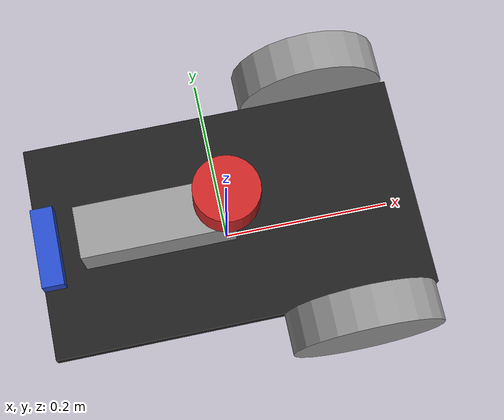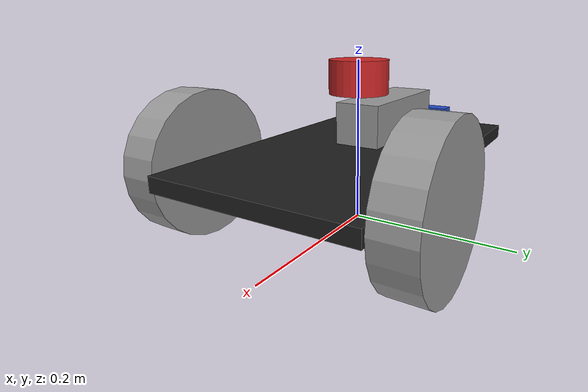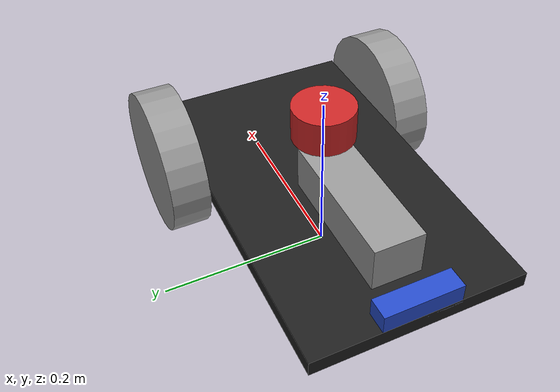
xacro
<?xml version="1.0"?>
<robot xmlns:xacro="http://www.ros.org/wiki/xacro"  name="salamanca">

    <xacro:include filename="common_properties.xacro" />
    <xacro:include filename="robot_core.xacro"/>
    <xacro:include filename="gazebo_control.xacro"/>
    <xacro:include filename="lidar.xacro"/>
    <xacro:include filename="camera.xacro"/>

</robot>

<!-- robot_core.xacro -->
<robot xmlns:xacro="http://www.ros.org/wiki/xacro">
    <xacro:property name="scale_factor" value="0.001" />

     <!--Base size -->
    <xacro:property name="base_length" value="0.43" />
    <xacro:property name="base_width" value="0.245" />
    <xacro:property name="base_height" value="0.018" />
    <xacro:property name="base_mass" value="1" />

    <!--Castor wheel size -->
    <xacro:property name="castor_radius" value="0.022" />
    <xacro:property name="castor_height" value="0.007" />
    <xacro:property name="castor_mass" value="0.08" />

    <!--Realsense size -->
    <xacro:property name="realsense_length" value="0.025" />
    <xacro:property name="realsense_width" value="0.09" />
    <xacro:property name="realsense_height" value="0.025" />
    <xacro:property name="realsense_mass" value="0.072" />

    <!--Jetson size -->
    <xacro:property name="jetson_length" value="0.10" />
    <xacro:property name="jetson_width" value="0.079" />
    <xacro:property name="jetson_height" value="0.029" />
    <xacro:property name="jetson_mass" value="0.28" />

    <!--Odrive size -->
    <xacro:property name="odrive_radius" value="0.0855" />
    <xacro:property name="odrive_height" value="0.045" />
    <xacro:property name="odrive_mass" value="2.2" />

    <!--Rplidar mount size-->
    <xacro:property name="rplidar_mount_length" value="0.075" />
    <xacro:property name="rplidar_mount_width" value="0.075" />
    <xacro:property name="rplidar_mount_height" value="0.045" />
    <xacro:property name="rplidar_mount_mass" value="0.34" />

    <!--Tattu battery size -->
    <xacro:property name="battery_length" value="0.17" />
    <xacro:property name="battery_width" value="0.058" />
    <xacro:property name="battery_height" value="0.062" />
    <xacro:property name="battery_mass" value="1.974" />

    <link name="base_link">

    </link>

    <!-- Platform link -->

    <joint name="platform_joint" type="fixed">
        <parent link="base_link" />
        <child link="platform" />
        <origin xyz="0 0 ${odrive_radius}" />
    </joint>

    <link name="platform">
        <visual>
            <geometry>
                <box size="${base_length} ${base_width} ${base_height}" />
            </geometry>
            <origin xyz="0 0 0" rpy="0 0 0" />
        </visual>
        <collision>
            <geometry>
                <box size="${base_length} ${base_width} ${base_height}" />
            </geometry>
            <origin xyz="0 0 0" rpy="0 0 0" />
        </collision>
        <xacro:box_inertia m="${base_mass}" l="${base_length}" w="${base_width}" h="${base_height}"
            xyz="0 0 0" rpy="0 0 0" />
    </link>

    <gazebo reference="platform">
        <material>Gazebo/Black</material>
    </gazebo>

    <!-- Battery link -->

    <joint name="battery_joint" type="fixed">
        <parent link="platform" />
        <child link="battery" />
        <origin xyz="-0.08 0 ${battery_height/2}" rpy="0 0 0" />
    </joint>

    <link name="battery">
        <visual>
            <geometry>
                <box size="${battery_length} ${battery_width} ${battery_height}" />
            </geometry>
            <origin xyz="0 0 0" rpy="0 0 0" />
        </visual>
        <collision>
            <geometry>
                <box size="${battery_length} ${battery_width} ${battery_height}" />
            </geometry>
            <origin xyz="0 0 0" rpy="0 0 0" />
        </collision>
        <xacro:box_inertia m="${battery_mass}" l="${battery_length}" w="${battery_width}" h="${battery_height}"
            xyz="0 0 0" rpy="0 0 0" />
    </link>

    <gazebo reference="battery">
        <material>Gazebo/Grey</material>
    </gazebo>

    <!-- Left wheel link -->
    <joint name="left_wheel_joint" type="continuous">
        <parent link="base_link" />
        <child link="left_wheel" />
        <origin xyz="${odrive_radius + 0.04} ${(-base_width / 2) - (odrive_height/2)} ${odrive_radius}" rpy="-${pi/2} 0 0" />
        <axis xyz="0 0 -1"/>
    </joint>

    <link name="left_wheel">
        <visual>
            <geometry>
                <cylinder radius="${odrive_radius}" length="${odrive_height}" />
            </geometry>
        </visual>
        <collision>
            <geometry>
                <cylinder radius="${odrive_radius}" length="${odrive_height}" />
            </geometry>
            <origin xyz="0 0 0" rpy="0 0 0" />
        </collision>
        <xacro:cylinder_inertia m="${odrive_mass}" r="${odrive_radius}" h="${odrive_height}"
            xyz="0 0 0" rpy="0 0 0" />
    </link>

    <gazebo reference="left_wheel">
        <material>Gazebo/Grey</material>
    </gazebo>

    <!-- Right wheel link -->
    <joint name="right_wheel_joint" type="continuous">
        <parent link="base_link" />
        <child link="right_wheel" />
        <origin xyz="${odrive_radius + 0.04} ${(base_width / 2) + (odrive_height/2)} ${odrive_radius}" rpy="${pi/2} 0 0" />
        <axis xyz="0 0 1"/>
    </joint>

    <link name="right_wheel">
        <visual>
            <geometry>
                <cylinder radius="${odrive_radius}" length="${odrive_height}" />
            </geometry>
        </visual>
        <collision>
            <geometry>
                <cylinder radius="${odrive_radius}" length="${odrive_height}" />
            </geometry>
            <origin xyz="0 0 0" rpy="0 0 0" />
        </collision>
        <xacro:cylinder_inertia m="${odrive_mass}" r="${odrive_radius}" h="${odrive_height}"
            xyz="0 0 0" rpy="0 0 0" />
    </link>

    <gazebo reference="right_wheel">
        <material>Gazebo/Grey</material>
    </gazebo>

    <!-- Castor Wheel link -->

    <joint name="castor_joint" type="fixed">
        <parent link="base_link" />
        <child link="castor_wheel" />
        <origin xyz="${-(2/7)*base_length + 0.01} 0 ${odrive_radius/2}" rpy="0 0 0" />
    </joint>

    <link name="castor_wheel">
        <visual>
            <geometry>
                <sphere radius="${odrive_radius/2}" />
            </geometry>
        </visual>
        <collision>
            <geometry>
                <sphere radius="${odrive_radius/2}" />
            </geometry>
            <origin xyz="0 0 0" rpy="0 0 0" />
        </collision>
        <xacro:cylinder_inertia m="${castor_mass}" r="${castor_radius}" h="${castor_height}"
            xyz="0 0 0" rpy="0 0 0" />
    </link>

    <gazebo reference="castor_wheel">
        <material>Gazebo/Grey</material>
        <mu1 value="0.001"/>
        <mu2 value="0.001"/>
    </gazebo>

</robot>

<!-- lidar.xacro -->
<robot xmlns:xacro="http://www.ros.org/wiki/xacro">

    <!--rplidar a2 size -->
    <xacro:property name="rplidar_a2_radius" value="0.03625" />
    <xacro:property name="rplidar_a2_height" value="0.041" />
    <xacro:property name="rplidar_a2_mass" value="0.19" />

    <joint name="laser_joint" type="fixed">
        <parent link="platform" />
        <child link="laser_frame" />
        <origin xyz="0 0 0.095" rpy="0 0 0"/>
    </joint>

    <link name="laser_frame">
        <visual>
            <geometry>
                <cylinder radius="${rplidar_a2_radius}" length="${rplidar_a2_height}" />
            </geometry>
        </visual>
        <collision>
            <geometry>
                <cylinder radius="${rplidar_a2_radius}" length="${rplidar_a2_height}" />
            </geometry>
            <origin xyz="0 0 0" rpy="0 0 0" />
        </collision>
        <xacro:cylinder_inertia m="${rplidar_a2_mass}" r="${rplidar_a2_radius}" h="${rplidar_a2_height}"
            xyz="0 0 0" rpy="0 0 0" />
    </link>

    <gazebo reference="laser_frame">
        <material>Gazebo/Red</material>

        <sensor name="laser" type="ray">
            <pose> 0 0 0 0 0 0 </pose>
            <visualize>true</visualize>
            <update_rate>10</update_rate>
            <ray>
                <scan>
                    <horizontal>
                        <samples>360</samples>
                        <min_angle>-3.14</min_angle>
                        <max_angle>3.14</max_angle>
                    </horizontal>
                </scan>
                <range>
                    <min>0.3</min>
                    <max>12</max>
                </range>
            </ray>
            <plugin name="laser_controller" filename="libgazebo_ros_ray_sensor.so">
                <ros>
                    <argument>~/out:=scan</argument>
                </ros>
                <output_type>sensor_msgs/LaserScan</output_type>
                <frame_name>laser_frame</frame_name>
            </plugin>
        </sensor>
    </gazebo>

</robot>

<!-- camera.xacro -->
<robot xmlns:xacro="http://www.ros.org/wiki/xacro">

    <!-- Camera link -->

    <joint name="camera_joint" type="fixed">
        <parent link="platform" />
        <child link="camera_link" />
        <origin xyz="${(-base_length/2) + (realsense_length/2)} 0 ${base_height}" rpy="0 0 ${pi}"/>
    </joint>

    <link name="camera_link">
        <visual>
            <geometry>
                <box size="${realsense_length} ${realsense_width} ${realsense_height}" />
            </geometry>
            <origin xyz="0 0 0" rpy="0 0 0" />
        </visual>
    </link>

    <!-- Camera link - optical -->

    <joint name="camera_optical_joint" type="fixed">
        <parent link="camera_link" />
        <child link="camera_optical_link" />
        <origin xyz="0 0 0" rpy="${-pi/2} 0 ${-pi/2}"/>
    </joint>

    <link name="camera_optical_link"></link>

    <gazebo reference="camera_link">
        <material>Gazebo/Blue</material>

        <sensor name="camera" type="camera">
            <pose> 0 0 0 0 0 0 </pose>
            <visualize>true</visualize>
            <update_rate>10</update_rate>
            <camera>
                <horizontal_fov>1.089</horizontal_fov>
                <image>
                    <format>R8G8B8</format>
                    <width>640</width>
                    <height>480</height>
                </image>
                <clip>
                    <near>0.05</near>
                    <far>8.0</far>
                </clip>
            </camera>
            <plugin name="camera_controller" filename="libgazebo_ros_camera.so">
                <frame_name>camera_optical_link</frame_name>
            </plugin>
        </sensor>
    </gazebo>

</robot>
